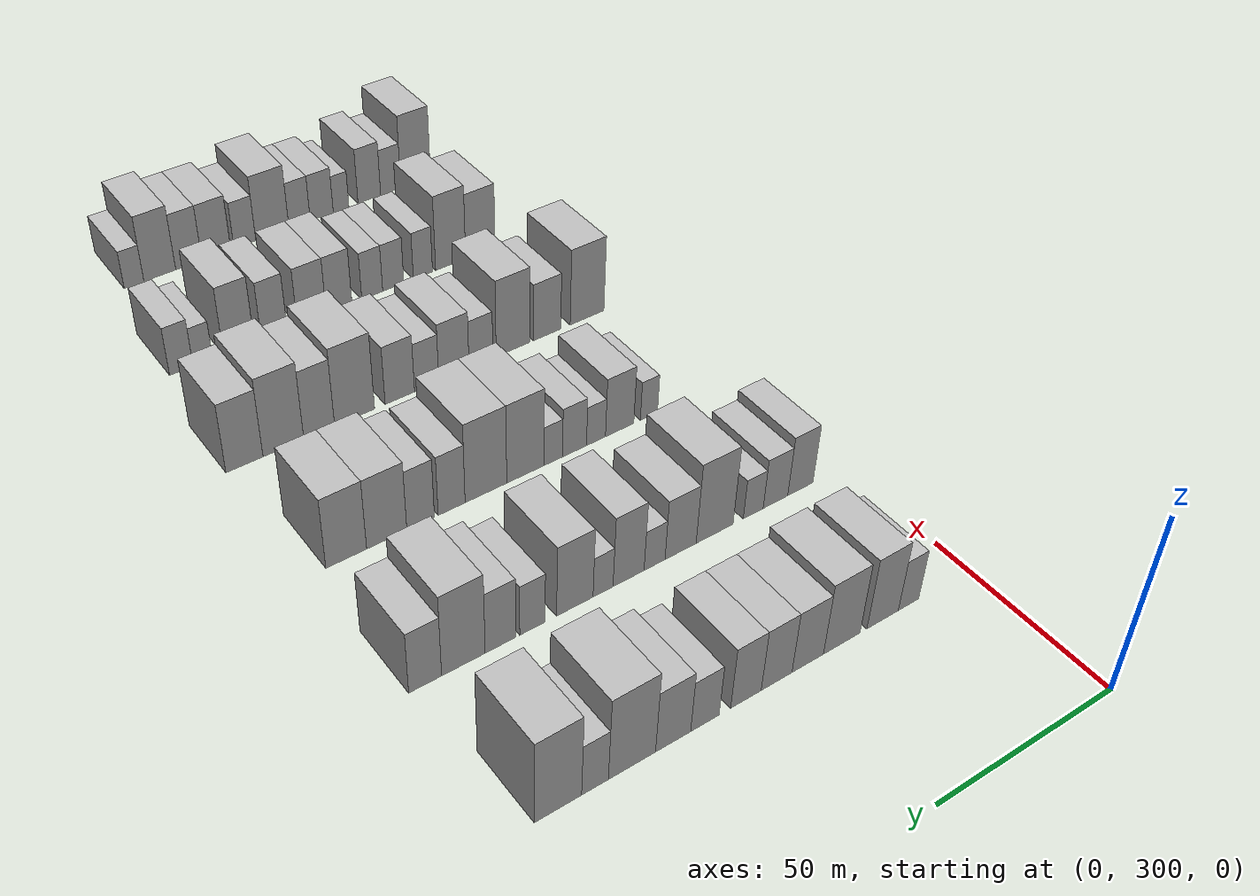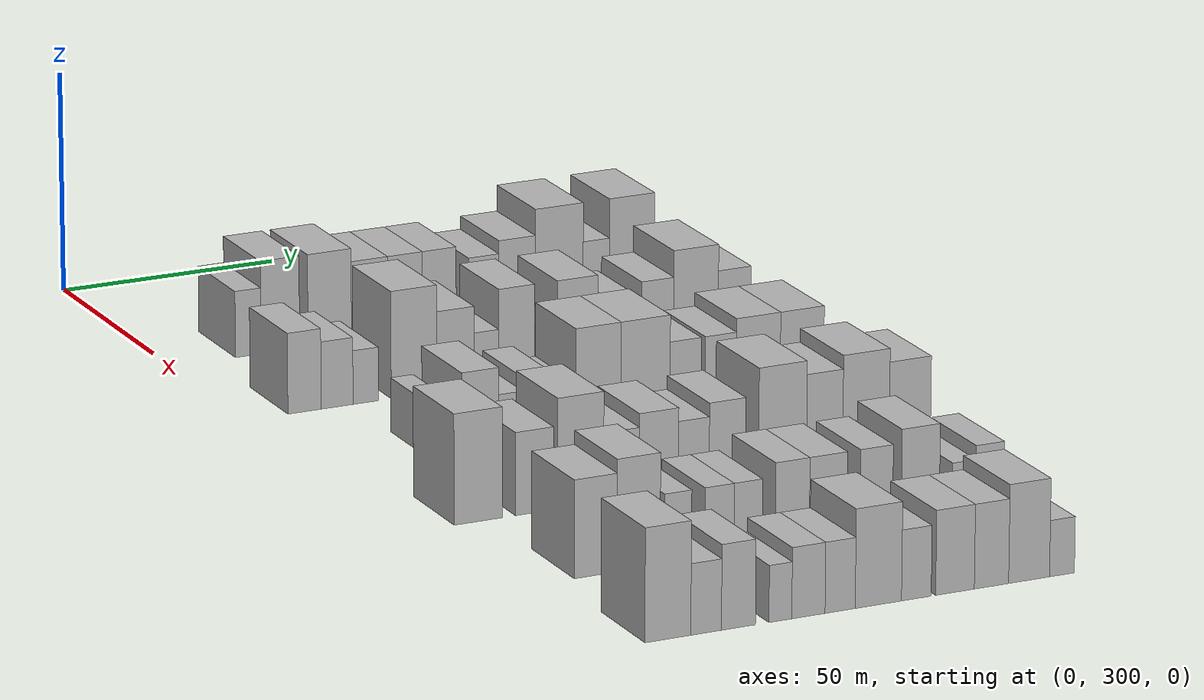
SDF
<sdf version="1.6">
 <world name="default">
  <model name="building_106">
   <static>1</static>
   <pose>50.0000 318.1851 0 0.000000 0.000000 0.000000</pose>
   <link name="link">
    <pose>0 0 7.50 0 0 0</pose>
    <collision name="collision"><geometry><box><size>20.0000 6.0369 15.0000</size></box></geometry></collision>
    <visual name="visual">
     <cast_shadows>0</cast_shadows>
     <geometry><box><size>20.0000 6.0369 15.0000</size></box></geometry>
     <material>
      <script>
       <uri>model://HANNAS_wall/materials/scripts</uri>
       <uri>model://HANNAS_wall/materials/textures</uri>
       <name>vrc/HANNAS_wall</name>
      </script>
     </material>
    </visual>
   </link>
  </model>
  <model name="building_107">
   <static>1</static>
   <pose>50.0000 325.7697 0 0.000000 0.000000 0.000000</pose>
   <link name="link">
    <pose>0 0 10.50 0 0 0</pose>
    <collision name="collision"><geometry><box><size>20.0000 9.1323 21.0000</size></box></geometry></collision>
    <visual name="visual">
     <cast_shadows>0</cast_shadows>
     <geometry><box><size>20.0000 9.1323 21.0000</size></box></geometry>
     <material>
      <script>
       <uri>model://HANNAS_wall/materials/scripts</uri>
       <uri>model://HANNAS_wall/materials/textures</uri>
       <name>vrc/HANNAS_wall</name>
      </script>
     </material>
    </visual>
   </link>
  </model>
  <model name="building_108">
   <static>1</static>
   <pose>50.0000 337.5017 0 0.000000 0.000000 0.000000</pose>
   <link name="link">
    <pose>0 0 10.50 0 0 0</pose>
    <collision name="collision"><geometry><box><size>20.0000 10.3317 21.0000</size></box></geometry></collision>
    <visual name="visual">
     <cast_shadows>0</cast_shadows>
     <geometry><box><size>20.0000 10.3317 21.0000</size></box></geometry>
     <material>
      <script>
       <uri>model://HANNAS_wall/materials/scripts</uri>
       <uri>model://HANNAS_wall/materials/textures</uri>
       <name>vrc/HANNAS_wall</name>
      </script>
     </material>
    </visual>
   </link>
  </model>
  <model name="building_109">
   <static>1</static>
   <pose>50.0000 347.0142 0 0.000000 0.000000 0.000000</pose>
   <link name="link">
    <pose>0 0 9.00 0 0 0</pose>
    <collision name="collision"><geometry><box><size>20.0000 8.6933 18.0000</size></box></geometry></collision>
    <visual name="visual">
     <cast_shadows>0</cast_shadows>
     <geometry><box><size>20.0000 8.6933 18.0000</size></box></geometry>
     <material>
      <script>
       <uri>model://HANNAS_wall/materials/scripts</uri>
       <uri>model://HANNAS_wall/materials/textures</uri>
       <name>vrc/HANNAS_wall</name>
      </script>
     </material>
    </visual>
   </link>
  </model>
  <model name="building_110">
   <static>1</static>
   <pose>50.0000 355.5153 0 0.000000 0.000000 0.000000</pose>
   <link name="link">
    <pose>0 0 9.00 0 0 0</pose>
    <collision name="collision"><geometry><box><size>20.0000 8.3088 18.0000</size></box></geometry></collision>
    <visual name="visual">
     <cast_shadows>0</cast_shadows>
     <geometry><box><size>20.0000 8.3088 18.0000</size></box></geometry>
     <material>
      <script>
       <uri>model://HANNAS_wall/materials/scripts</uri>
       <uri>model://HANNAS_wall/materials/textures</uri>
       <name>vrc/HANNAS_wall</name>
      </script>
     </material>
    </visual>
   </link>
  </model>
  <model name="building_111">
   <static>1</static>
   <pose>50.0000 363.7151 0 0.000000 0.000000 0.000000</pose>
   <link name="link">
    <pose>0 0 9.00 0 0 0</pose>
    <collision name="collision"><geometry><box><size>20.0000 8.0907 18.0000</size></box></geometry></collision>
    <visual name="visual">
     <cast_shadows>0</cast_shadows>
     <geometry><box><size>20.0000 8.0907 18.0000</size></box></geometry>
     <material>
      <script>
       <uri>model://HANNAS_wall/materials/scripts</uri>
       <uri>model://HANNAS_wall/materials/textures</uri>
       <name>vrc/HANNAS_wall</name>
      </script>
     </material>
    </visual>
   </link>
  </model>
  <model name="building_112">
   <static>1</static>
   <pose>50.0000 374.4241 0 0.000000 0.000000 0.000000</pose>
   <link name="link">
    <pose>0 0 7.50 0 0 0</pose>
    <collision name="collision"><geometry><box><size>20.0000 7.3274 15.0000</size></box></geometry></collision>
    <visual name="visual">
     <cast_shadows>0</cast_shadows>
     <geometry><box><size>20.0000 7.3274 15.0000</size></box></geometry>
     <material>
      <script>
       <uri>model://HANNAS_wall/materials/scripts</uri>
       <uri>model://HANNAS_wall/materials/textures</uri>
       <name>vrc/HANNAS_wall</name>
      </script>
     </material>
    </visual>
   </link>
  </model>
  <model name="building_113">
   <static>1</static>
   <pose>50.0000 382.5127 0 0.000000 0.000000 0.000000</pose>
   <link name="link">
    <pose>0 0 9.00 0 0 0</pose>
    <collision name="collision"><geometry><box><size>20.0000 8.8498 18.0000</size></box></geometry></collision>
    <visual name="visual">
     <cast_shadows>0</cast_shadows>
     <geometry><box><size>20.0000 8.8498 18.0000</size></box></geometry>
     <material>
      <script>
       <uri>model://HANNAS_wall/materials/scripts</uri>
       <uri>model://HANNAS_wall/materials/textures</uri>
       <name>vrc/HANNAS_wall</name>
      </script>
     </material>
    </visual>
   </link>
  </model>
  <model name="building_114">
   <static>1</static>
   <pose>50.0000 392.7235 0 0.000000 0.000000 0.000000</pose>
   <link name="link">
    <pose>0 0 12.00 0 0 0</pose>
    <collision name="collision"><geometry><box><size>20.0000 11.5718 24.0000</size></box></geometry></collision>
    <visual name="visual">
     <cast_shadows>0</cast_shadows>
     <geometry><box><size>20.0000 11.5718 24.0000</size></box></geometry>
     <material>
      <script>
       <uri>model://HANNAS_wall/materials/scripts</uri>
       <uri>model://HANNAS_wall/materials/textures</uri>
       <name>vrc/HANNAS_wall</name>
      </script>
     </material>
    </visual>
   </link>
  </model>
  <model name="building_115">
   <static>1</static>
   <pose>50.0000 401.7098 0 0.000000 0.000000 0.000000</pose>
   <link name="link">
    <pose>0 0 7.50 0 0 0</pose>
    <collision name="collision"><geometry><box><size>20.0000 6.4007 15.0000</size></box></geometry></collision>
    <visual name="visual">
     <cast_shadows>0</cast_shadows>
     <geometry><box><size>20.0000 6.4007 15.0000</size></box></geometry>
     <material>
      <script>
       <uri>model://HANNAS_wall/materials/scripts</uri>
       <uri>model://HANNAS_wall/materials/textures</uri>
       <name>vrc/HANNAS_wall</name>
      </script>
     </material>
    </visual>
   </link>
  </model>
  <model name="building_116">
   <static>1</static>
   <pose>50.0000 410.4391 0 0.000000 0.000000 0.000000</pose>
   <link name="link">
    <pose>0 0 12.00 0 0 0</pose>
    <collision name="collision"><geometry><box><size>20.0000 11.0579 24.0000</size></box></geometry></collision>
    <visual name="visual">
     <cast_shadows>0</cast_shadows>
     <geometry><box><size>20.0000 11.0579 24.0000</size></box></geometry>
     <material>
      <script>
       <uri>model://HANNAS_wall/materials/scripts</uri>
       <uri>model://HANNAS_wall/materials/textures</uri>
       <name>vrc/HANNAS_wall</name>
      </script>
     </material>
    </visual>
   </link>
  </model>
  <model name="building_247">
   <static>1</static>
   <pose>90.0000 313.7544 0 0.000000 0.000000 0.000000</pose>
   <link name="link">
    <pose>0 0 9.00 0 0 0</pose>
    <collision name="collision"><geometry><box><size>20.0000 7.7348 18.0000</size></box></geometry></collision>
    <visual name="visual">
     <cast_shadows>0</cast_shadows>
     <geometry><box><size>20.0000 7.7348 18.0000</size></box></geometry>
     <material>
      <script>
       <uri>model://HANNAS_wall/materials/scripts</uri>
       <uri>model://HANNAS_wall/materials/textures</uri>
       <name>vrc/HANNAS_wall</name>
      </script>
     </material>
    </visual>
   </link>
  </model>
  <model name="building_248">
   <static>1</static>
   <pose>90.0000 321.3329 0 0.000000 0.000000 0.000000</pose>
   <link name="link">
    <pose>0 0 7.50 0 0 0</pose>
    <collision name="collision"><geometry><box><size>20.0000 7.4222 15.0000</size></box></geometry></collision>
    <visual name="visual">
     <cast_shadows>0</cast_shadows>
     <geometry><box><size>20.0000 7.4222 15.0000</size></box></geometry>
     <material>
      <script>
       <uri>model://HANNAS_wall/materials/scripts</uri>
       <uri>model://HANNAS_wall/materials/textures</uri>
       <name>vrc/HANNAS_wall</name>
      </script>
     </material>
    </visual>
   </link>
  </model>
  <model name="building_249">
   <static>1</static>
   <pose>90.0000 328.0067 0 0.000000 0.000000 0.000000</pose>
   <link name="link">
    <pose>0 0 6.00 0 0 0</pose>
    <collision name="collision"><geometry><box><size>20.0000 5.9254 12.0000</size></box></geometry></collision>
    <visual name="visual">
     <cast_shadows>0</cast_shadows>
     <geometry><box><size>20.0000 5.9254 12.0000</size></box></geometry>
     <material>
      <script>
       <uri>model://HANNAS_wall/materials/scripts</uri>
       <uri>model://HANNAS_wall/materials/textures</uri>
       <name>vrc/HANNAS_wall</name>
      </script>
     </material>
    </visual>
   </link>
  </model>
  <model name="building_250">
   <static>1</static>
   <pose>90.0000 339.3198 0 0.000000 0.000000 0.000000</pose>
   <link name="link">
    <pose>0 0 12.00 0 0 0</pose>
    <collision name="collision"><geometry><box><size>20.0000 10.7007 24.0000</size></box></geometry></collision>
    <visual name="visual">
     <cast_shadows>0</cast_shadows>
     <geometry><box><size>20.0000 10.7007 24.0000</size></box></geometry>
     <material>
      <script>
       <uri>model://HANNAS_wall/materials/scripts</uri>
       <uri>model://HANNAS_wall/materials/textures</uri>
       <name>vrc/HANNAS_wall</name>
      </script>
     </material>
    </visual>
   </link>
  </model>
  <model name="building_251">
   <static>1</static>
   <pose>90.0000 349.0833 0 0.000000 0.000000 0.000000</pose>
   <link name="link">
    <pose>0 0 9.00 0 0 0</pose>
    <collision name="collision"><geometry><box><size>20.0000 8.8263 18.0000</size></box></geometry></collision>
    <visual name="visual">
     <cast_shadows>0</cast_shadows>
     <geometry><box><size>20.0000 8.8263 18.0000</size></box></geometry>
     <material>
      <script>
       <uri>model://HANNAS_wall/materials/scripts</uri>
       <uri>model://HANNAS_wall/materials/textures</uri>
       <name>vrc/HANNAS_wall</name>
      </script>
     </material>
    </visual>
   </link>
  </model>
  <model name="building_252">
   <static>1</static>
   <pose>90.0000 356.4102 0 0.000000 0.000000 0.000000</pose>
   <link name="link">
    <pose>0 0 6.00 0 0 0</pose>
    <collision name="collision"><geometry><box><size>20.0000 5.8276 12.0000</size></box></geometry></collision>
    <visual name="visual">
     <cast_shadows>0</cast_shadows>
     <geometry><box><size>20.0000 5.8276 12.0000</size></box></geometry>
     <material>
      <script>
       <uri>model://HANNAS_wall/materials/scripts</uri>
       <uri>model://HANNAS_wall/materials/textures</uri>
       <name>vrc/HANNAS_wall</name>
      </script>
     </material>
    </visual>
   </link>
  </model>
  <model name="building_253">
   <static>1</static>
   <pose>90.0000 363.5748 0 0.000000 0.000000 0.000000</pose>
   <link name="link">
    <pose>0 0 10.50 0 0 0</pose>
    <collision name="collision"><geometry><box><size>20.0000 8.5016 21.0000</size></box></geometry></collision>
    <visual name="visual">
     <cast_shadows>0</cast_shadows>
     <geometry><box><size>20.0000 8.5016 21.0000</size></box></geometry>
     <material>
      <script>
       <uri>model://HANNAS_wall/materials/scripts</uri>
       <uri>model://HANNAS_wall/materials/textures</uri>
       <name>vrc/HANNAS_wall</name>
      </script>
     </material>
    </visual>
   </link>
  </model>
  <model name="building_254">
   <static>1</static>
   <pose>90.0000 370.5193 0 0.000000 0.000000 0.000000</pose>
   <link name="link">
    <pose>0 0 6.00 0 0 0</pose>
    <collision name="collision"><geometry><box><size>20.0000 5.3873 12.0000</size></box></geometry></collision>
    <visual name="visual">
     <cast_shadows>0</cast_shadows>
     <geometry><box><size>20.0000 5.3873 12.0000</size></box></geometry>
     <material>
      <script>
       <uri>model://HANNAS_wall/materials/scripts</uri>
       <uri>model://HANNAS_wall/materials/textures</uri>
       <name>vrc/HANNAS_wall</name>
      </script>
     </material>
    </visual>
   </link>
  </model>
  <model name="building_255">
   <static>1</static>
   <pose>90.0000 378.0370 0 0.000000 0.000000 0.000000</pose>
   <link name="link">
    <pose>0 0 10.50 0 0 0</pose>
    <collision name="collision"><geometry><box><size>20.0000 9.6482 21.0000</size></box></geometry></collision>
    <visual name="visual">
     <cast_shadows>0</cast_shadows>
     <geometry><box><size>20.0000 9.6482 21.0000</size></box></geometry>
     <material>
      <script>
       <uri>model://HANNAS_wall/materials/scripts</uri>
       <uri>model://HANNAS_wall/materials/textures</uri>
       <name>vrc/HANNAS_wall</name>
      </script>
     </material>
    </visual>
   </link>
  </model>
  <model name="building_256">
   <static>1</static>
   <pose>90.0000 389.1074 0 0.000000 0.000000 0.000000</pose>
   <link name="link">
    <pose>0 0 7.50 0 0 0</pose>
    <collision name="collision"><geometry><box><size>20.0000 6.4924 15.0000</size></box></geometry></collision>
    <visual name="visual">
     <cast_shadows>0</cast_shadows>
     <geometry><box><size>20.0000 6.4924 15.0000</size></box></geometry>
     <material>
      <script>
       <uri>model://HANNAS_wall/materials/scripts</uri>
       <uri>model://HANNAS_wall/materials/textures</uri>
       <name>vrc/HANNAS_wall</name>
      </script>
     </material>
    </visual>
   </link>
  </model>
  <model name="building_257">
   <static>1</static>
   <pose>90.0000 397.2209 0 0.000000 0.000000 0.000000</pose>
   <link name="link">
    <pose>0 0 9.00 0 0 0</pose>
    <collision name="collision"><geometry><box><size>20.0000 7.7346 18.0000</size></box></geometry></collision>
    <visual name="visual">
     <cast_shadows>0</cast_shadows>
     <geometry><box><size>20.0000 7.7346 18.0000</size></box></geometry>
     <material>
      <script>
       <uri>model://HANNAS_wall/materials/scripts</uri>
       <uri>model://HANNAS_wall/materials/textures</uri>
       <name>vrc/HANNAS_wall</name>
      </script>
     </material>
    </visual>
   </link>
  </model>
  <model name="building_258">
   <static>1</static>
   <pose>90.0000 406.4496 0 0.000000 0.000000 0.000000</pose>
   <link name="link">
    <pose>0 0 12.00 0 0 0</pose>
    <collision name="collision"><geometry><box><size>20.0000 10.7229 24.0000</size></box></geometry></collision>
    <visual name="visual">
     <cast_shadows>0</cast_shadows>
     <geometry><box><size>20.0000 10.7229 24.0000</size></box></geometry>
     <material>
      <script>
       <uri>model://HANNAS_wall/materials/scripts</uri>
       <uri>model://HANNAS_wall/materials/textures</uri>
       <name>vrc/HANNAS_wall</name>
      </script>
     </material>
    </visual>
   </link>
  </model>
  <model name="building_259">
   <static>1</static>
   <pose>90.0000 415.7829 0 0.000000 0.000000 0.000000</pose>
   <link name="link">
    <pose>0 0 9.00 0 0 0</pose>
    <collision name="collision"><geometry><box><size>20.0000 7.9437 18.0000</size></box></geometry></collision>
    <visual name="visual">
     <cast_shadows>0</cast_shadows>
     <geometry><box><size>20.0000 7.9437 18.0000</size></box></geometry>
     <material>
      <script>
       <uri>model://HANNAS_wall/materials/scripts</uri>
       <uri>model://HANNAS_wall/materials/textures</uri>
       <name>vrc/HANNAS_wall</name>
      </script>
     </material>
    </visual>
   </link>
  </model>
  <model name="building_383">
   <static>1</static>
   <pose>130.0000 327.3970 0 0.000000 0.000000 0.000000</pose>
   <link name="link">
    <pose>0 0 6.00 0 0 0</pose>
    <collision name="collision"><geometry><box><size>20.0000 5.2364 12.0000</size></box></geometry></collision>
    <visual name="visual">
     <cast_shadows>0</cast_shadows>
     <geometry><box><size>20.0000 5.2364 12.0000</size></box></geometry>
     <material>
      <script>
       <uri>model://HANNAS_wall/materials/scripts</uri>
       <uri>model://HANNAS_wall/materials/textures</uri>
       <name>vrc/HANNAS_wall</name>
      </script>
     </material>
    </visual>
   </link>
  </model>
  <model name="building_384">
   <static>1</static>
   <pose>130.0000 336.2812 0 0.000000 0.000000 0.000000</pose>
   <link name="link">
    <pose>0 0 9.00 0 0 0</pose>
    <collision name="collision"><geometry><box><size>20.0000 8.5319 18.0000</size></box></geometry></collision>
    <visual name="visual">
     <cast_shadows>0</cast_shadows>
     <geometry><box><size>20.0000 8.5319 18.0000</size></box></geometry>
     <material>
      <script>
       <uri>model://HANNAS_wall/materials/scripts</uri>
       <uri>model://HANNAS_wall/materials/textures</uri>
       <name>vrc/HANNAS_wall</name>
      </script>
     </material>
    </visual>
   </link>
  </model>
  <model name="building_385">
   <static>1</static>
   <pose>130.0000 343.3643 0 0.000000 0.000000 0.000000</pose>
   <link name="link">
    <pose>0 0 6.00 0 0 0</pose>
    <collision name="collision"><geometry><box><size>20.0000 5.6344 12.0000</size></box></geometry></collision>
    <visual name="visual">
     <cast_shadows>0</cast_shadows>
     <geometry><box><size>20.0000 5.6344 12.0000</size></box></geometry>
     <material>
      <script>
       <uri>model://HANNAS_wall/materials/scripts</uri>
       <uri>model://HANNAS_wall/materials/textures</uri>
       <name>vrc/HANNAS_wall</name>
      </script>
     </material>
    </visual>
   </link>
  </model>
  <model name="building_386">
   <static>1</static>
   <pose>130.0000 349.6934 0 0.000000 0.000000 0.000000</pose>
   <link name="link">
    <pose>0 0 7.50 0 0 0</pose>
    <collision name="collision"><geometry><box><size>20.0000 7.0237 15.0000</size></box></geometry></collision>
    <visual name="visual">
     <cast_shadows>0</cast_shadows>
     <geometry><box><size>20.0000 7.0237 15.0000</size></box></geometry>
     <material>
      <script>
       <uri>model://HANNAS_wall/materials/scripts</uri>
       <uri>model://HANNAS_wall/materials/textures</uri>
       <name>vrc/HANNAS_wall</name>
      </script>
     </material>
    </visual>
   </link>
  </model>
  <model name="building_387">
   <static>1</static>
   <pose>130.0000 355.8653 0 0.000000 0.000000 0.000000</pose>
   <link name="link">
    <pose>0 0 6.00 0 0 0</pose>
    <collision name="collision"><geometry><box><size>20.0000 5.3201 12.0000</size></box></geometry></collision>
    <visual name="visual">
     <cast_shadows>0</cast_shadows>
     <geometry><box><size>20.0000 5.3201 12.0000</size></box></geometry>
     <material>
      <script>
       <uri>model://HANNAS_wall/materials/scripts</uri>
       <uri>model://HANNAS_wall/materials/textures</uri>
       <name>vrc/HANNAS_wall</name>
      </script>
     </material>
    </visual>
   </link>
  </model>
  <model name="building_388">
   <static>1</static>
   <pose>130.0000 363.8069 0 0.000000 0.000000 0.000000</pose>
   <link name="link">
    <pose>0 0 12.00 0 0 0</pose>
    <collision name="collision"><geometry><box><size>20.0000 10.5631 24.0000</size></box></geometry></collision>
    <visual name="visual">
     <cast_shadows>0</cast_shadows>
     <geometry><box><size>20.0000 10.5631 24.0000</size></box></geometry>
     <material>
      <script>
       <uri>model://HANNAS_wall/materials/scripts</uri>
       <uri>model://HANNAS_wall/materials/textures</uri>
       <name>vrc/HANNAS_wall</name>
      </script>
     </material>
    </visual>
   </link>
  </model>
  <model name="building_389">
   <static>1</static>
   <pose>130.0000 374.8373 0 0.000000 0.000000 0.000000</pose>
   <link name="link">
    <pose>0 0 12.00 0 0 0</pose>
    <collision name="collision"><geometry><box><size>20.0000 11.4977 24.0000</size></box></geometry></collision>
    <visual name="visual">
     <cast_shadows>0</cast_shadows>
     <geometry><box><size>20.0000 11.4977 24.0000</size></box></geometry>
     <material>
      <script>
       <uri>model://HANNAS_wall/materials/scripts</uri>
       <uri>model://HANNAS_wall/materials/textures</uri>
       <name>vrc/HANNAS_wall</name>
      </script>
     </material>
    </visual>
   </link>
  </model>
  <model name="building_390">
   <static>1</static>
   <pose>130.0000 384.2368 0 0.000000 0.000000 0.000000</pose>
   <link name="link">
    <pose>0 0 9.00 0 0 0</pose>
    <collision name="collision"><geometry><box><size>20.0000 7.3013 18.0000</size></box></geometry></collision>
    <visual name="visual">
     <cast_shadows>0</cast_shadows>
     <geometry><box><size>20.0000 7.3013 18.0000</size></box></geometry>
     <material>
      <script>
       <uri>model://HANNAS_wall/materials/scripts</uri>
       <uri>model://HANNAS_wall/materials/textures</uri>
       <name>vrc/HANNAS_wall</name>
      </script>
     </material>
    </visual>
   </link>
  </model>
  <model name="building_391">
   <static>1</static>
   <pose>130.0000 392.5499 0 0.000000 0.000000 0.000000</pose>
   <link name="link">
    <pose>0 0 9.00 0 0 0</pose>
    <collision name="collision"><geometry><box><size>20.0000 7.3250 18.0000</size></box></geometry></collision>
    <visual name="visual">
     <cast_shadows>0</cast_shadows>
     <geometry><box><size>20.0000 7.3250 18.0000</size></box></geometry>
     <material>
      <script>
       <uri>model://HANNAS_wall/materials/scripts</uri>
       <uri>model://HANNAS_wall/materials/textures</uri>
       <name>vrc/HANNAS_wall</name>
      </script>
     </material>
    </visual>
   </link>
  </model>
  <model name="building_392">
   <static>1</static>
   <pose>130.0000 401.4364 0 0.000000 0.000000 0.000000</pose>
   <link name="link">
    <pose>0 0 10.50 0 0 0</pose>
    <collision name="collision"><geometry><box><size>20.0000 10.4479 21.0000</size></box></geometry></collision>
    <visual name="visual">
     <cast_shadows>0</cast_shadows>
     <geometry><box><size>20.0000 10.4479 21.0000</size></box></geometry>
     <material>
      <script>
       <uri>model://HANNAS_wall/materials/scripts</uri>
       <uri>model://HANNAS_wall/materials/textures</uri>
       <name>vrc/HANNAS_wall</name>
      </script>
     </material>
    </visual>
   </link>
  </model>
  <model name="building_393">
   <static>1</static>
   <pose>130.0000 411.8456 0 0.000000 0.000000 0.000000</pose>
   <link name="link">
    <pose>0 0 10.50 0 0 0</pose>
    <collision name="collision"><geometry><box><size>20.0000 10.3705 21.0000</size></box></geometry></collision>
    <visual name="visual">
     <cast_shadows>0</cast_shadows>
     <geometry><box><size>20.0000 10.3705 21.0000</size></box></geometry>
     <material>
      <script>
       <uri>model://HANNAS_wall/materials/scripts</uri>
       <uri>model://HANNAS_wall/materials/textures</uri>
       <name>vrc/HANNAS_wall</name>
      </script>
     </material>
    </visual>
   </link>
  </model>
  <model name="building_522">
   <static>1</static>
   <pose>170.0000 317.1963 0 0.000000 0.000000 0.000000</pose>
   <link name="link">
    <pose>0 0 12.00 0 0 0</pose>
    <collision name="collision"><geometry><box><size>20.0000 10.8747 24.0000</size></box></geometry></collision>
    <visual name="visual">
     <cast_shadows>0</cast_shadows>
     <geometry><box><size>20.0000 10.8747 24.0000</size></box></geometry>
     <material>
      <script>
       <uri>model://HANNAS_wall/materials/scripts</uri>
       <uri>model://HANNAS_wall/materials/textures</uri>
       <name>vrc/HANNAS_wall</name>
      </script>
     </material>
    </visual>
   </link>
  </model>
  <model name="building_523">
   <static>1</static>
   <pose>170.0000 329.9461 0 0.000000 0.000000 0.000000</pose>
   <link name="link">
    <pose>0 0 9.00 0 0 0</pose>
    <collision name="collision"><geometry><box><size>20.0000 8.6248 18.0000</size></box></geometry></collision>
    <visual name="visual">
     <cast_shadows>0</cast_shadows>
     <geometry><box><size>20.0000 8.6248 18.0000</size></box></geometry>
     <material>
      <script>
       <uri>model://HANNAS_wall/materials/scripts</uri>
       <uri>model://HANNAS_wall/materials/textures</uri>
       <name>vrc/HANNAS_wall</name>
      </script>
     </material>
    </visual>
   </link>
  </model>
  <model name="building_524">
   <static>1</static>
   <pose>170.0000 340.4994 0 0.000000 0.000000 0.000000</pose>
   <link name="link">
    <pose>0 0 12.00 0 0 0</pose>
    <collision name="collision"><geometry><box><size>20.0000 10.4819 24.0000</size></box></geometry></collision>
    <visual name="visual">
     <cast_shadows>0</cast_shadows>
     <geometry><box><size>20.0000 10.4819 24.0000</size></box></geometry>
     <material>
      <script>
       <uri>model://HANNAS_wall/materials/scripts</uri>
       <uri>model://HANNAS_wall/materials/textures</uri>
       <name>vrc/HANNAS_wall</name>
      </script>
     </material>
    </visual>
   </link>
  </model>
  <model name="building_525">
   <static>1</static>
   <pose>170.0000 350.3435 0 0.000000 0.000000 0.000000</pose>
   <link name="link">
    <pose>0 0 7.50 0 0 0</pose>
    <collision name="collision"><geometry><box><size>20.0000 7.2061 15.0000</size></box></geometry></collision>
    <visual name="visual">
     <cast_shadows>0</cast_shadows>
     <geometry><box><size>20.0000 7.2061 15.0000</size></box></geometry>
     <material>
      <script>
       <uri>model://HANNAS_wall/materials/scripts</uri>
       <uri>model://HANNAS_wall/materials/textures</uri>
       <name>vrc/HANNAS_wall</name>
      </script>
     </material>
    </visual>
   </link>
  </model>
  <model name="building_526">
   <static>1</static>
   <pose>170.0000 358.4382 0 0.000000 0.000000 0.000000</pose>
   <link name="link">
    <pose>0 0 9.00 0 0 0</pose>
    <collision name="collision"><geometry><box><size>20.0000 8.9834 18.0000</size></box></geometry></collision>
    <visual name="visual">
     <cast_shadows>0</cast_shadows>
     <geometry><box><size>20.0000 8.9834 18.0000</size></box></geometry>
     <material>
      <script>
       <uri>model://HANNAS_wall/materials/scripts</uri>
       <uri>model://HANNAS_wall/materials/textures</uri>
       <name>vrc/HANNAS_wall</name>
      </script>
     </material>
    </visual>
   </link>
  </model>
  <model name="building_527">
   <static>1</static>
   <pose>170.0000 366.4706 0 0.000000 0.000000 0.000000</pose>
   <link name="link">
    <pose>0 0 7.50 0 0 0</pose>
    <collision name="collision"><geometry><box><size>20.0000 7.0814 15.0000</size></box></geometry></collision>
    <visual name="visual">
     <cast_shadows>0</cast_shadows>
     <geometry><box><size>20.0000 7.0814 15.0000</size></box></geometry>
     <material>
      <script>
       <uri>model://HANNAS_wall/materials/scripts</uri>
       <uri>model://HANNAS_wall/materials/textures</uri>
       <name>vrc/HANNAS_wall</name>
      </script>
     </material>
    </visual>
   </link>
  </model>
  <model name="building_528">
   <static>1</static>
   <pose>170.0000 374.2363 0 0.000000 0.000000 0.000000</pose>
   <link name="link">
    <pose>0 0 9.00 0 0 0</pose>
    <collision name="collision"><geometry><box><size>20.0000 8.4501 18.0000</size></box></geometry></collision>
    <visual name="visual">
     <cast_shadows>0</cast_shadows>
     <geometry><box><size>20.0000 8.4501 18.0000</size></box></geometry>
     <material>
      <script>
       <uri>model://HANNAS_wall/materials/scripts</uri>
       <uri>model://HANNAS_wall/materials/textures</uri>
       <name>vrc/HANNAS_wall</name>
      </script>
     </material>
    </visual>
   </link>
  </model>
  <model name="building_529">
   <static>1</static>
   <pose>170.0000 387.0454 0 0.000000 0.000000 0.000000</pose>
   <link name="link">
    <pose>0 0 12.00 0 0 0</pose>
    <collision name="collision"><geometry><box><size>20.0000 11.1680 24.0000</size></box></geometry></collision>
    <visual name="visual">
     <cast_shadows>0</cast_shadows>
     <geometry><box><size>20.0000 11.1680 24.0000</size></box></geometry>
     <material>
      <script>
       <uri>model://HANNAS_wall/materials/scripts</uri>
       <uri>model://HANNAS_wall/materials/textures</uri>
       <name>vrc/HANNAS_wall</name>
      </script>
     </material>
    </visual>
   </link>
  </model>
  <model name="building_530">
   <static>1</static>
   <pose>170.0000 396.8537 0 0.000000 0.000000 0.000000</pose>
   <link name="link">
    <pose>0 0 10.50 0 0 0</pose>
    <collision name="collision"><geometry><box><size>20.0000 8.4486 21.0000</size></box></geometry></collision>
    <visual name="visual">
     <cast_shadows>0</cast_shadows>
     <geometry><box><size>20.0000 8.4486 21.0000</size></box></geometry>
     <material>
      <script>
       <uri>model://HANNAS_wall/materials/scripts</uri>
       <uri>model://HANNAS_wall/materials/textures</uri>
       <name>vrc/HANNAS_wall</name>
      </script>
     </material>
    </visual>
   </link>
  </model>
  <model name="building_531">
   <static>1</static>
   <pose>170.0000 406.5333 0 0.000000 0.000000 0.000000</pose>
   <link name="link">
    <pose>0 0 12.00 0 0 0</pose>
    <collision name="collision"><geometry><box><size>20.0000 10.9107 24.0000</size></box></geometry></collision>
    <visual name="visual">
     <cast_shadows>0</cast_shadows>
     <geometry><box><size>20.0000 10.9107 24.0000</size></box></geometry>
     <material>
      <script>
       <uri>model://HANNAS_wall/materials/scripts</uri>
       <uri>model://HANNAS_wall/materials/textures</uri>
       <name>vrc/HANNAS_wall</name>
      </script>
     </material>
    </visual>
   </link>
  </model>
  <model name="building_532">
   <static>1</static>
   <pose>170.0000 416.8605 0 0.000000 0.000000 0.000000</pose>
   <link name="link">
    <pose>0 0 10.50 0 0 0</pose>
    <collision name="collision"><geometry><box><size>20.0000 9.7437 21.0000</size></box></geometry></collision>
    <visual name="visual">
     <cast_shadows>0</cast_shadows>
     <geometry><box><size>20.0000 9.7437 21.0000</size></box></geometry>
     <material>
      <script>
       <uri>model://HANNAS_wall/materials/scripts</uri>
       <uri>model://HANNAS_wall/materials/textures</uri>
       <name>vrc/HANNAS_wall</name>
      </script>
     </material>
    </visual>
   </link>
  </model>
  <model name="building_661">
   <static>1</static>
   <pose>210.0000 324.6876 0 0.000000 0.000000 0.000000</pose>
   <link name="link">
    <pose>0 0 10.50 0 0 0</pose>
    <collision name="collision"><geometry><box><size>20.0000 9.6117 21.0000</size></box></geometry></collision>
    <visual name="visual">
     <cast_shadows>0</cast_shadows>
     <geometry><box><size>20.0000 9.6117 21.0000</size></box></geometry>
     <material>
      <script>
       <uri>model://HANNAS_wall/materials/scripts</uri>
       <uri>model://HANNAS_wall/materials/textures</uri>
       <name>vrc/HANNAS_wall</name>
      </script>
     </material>
    </visual>
   </link>
  </model>
  <model name="building_662">
   <static>1</static>
   <pose>210.0000 334.3246 0 0.000000 0.000000 0.000000</pose>
   <link name="link">
    <pose>0 0 12.00 0 0 0</pose>
    <collision name="collision"><geometry><box><size>20.0000 9.6622 24.0000</size></box></geometry></collision>
    <visual name="visual">
     <cast_shadows>0</cast_shadows>
     <geometry><box><size>20.0000 9.6622 24.0000</size></box></geometry>
     <material>
      <script>
       <uri>model://HANNAS_wall/materials/scripts</uri>
       <uri>model://HANNAS_wall/materials/textures</uri>
       <name>vrc/HANNAS_wall</name>
      </script>
     </material>
    </visual>
   </link>
  </model>
  <model name="building_663">
   <static>1</static>
   <pose>210.0000 343.1887 0 0.000000 0.000000 0.000000</pose>
   <link name="link">
    <pose>0 0 7.50 0 0 0</pose>
    <collision name="collision"><geometry><box><size>20.0000 6.0659 15.0000</size></box></geometry></collision>
    <visual name="visual">
     <cast_shadows>0</cast_shadows>
     <geometry><box><size>20.0000 6.0659 15.0000</size></box></geometry>
     <material>
      <script>
       <uri>model://HANNAS_wall/materials/scripts</uri>
       <uri>model://HANNAS_wall/materials/textures</uri>
       <name>vrc/HANNAS_wall</name>
      </script>
     </material>
    </visual>
   </link>
  </model>
  <model name="building_664">
   <static>1</static>
   <pose>210.0000 352.5089 0 0.000000 0.000000 0.000000</pose>
   <link name="link">
    <pose>0 0 7.50 0 0 0</pose>
    <collision name="collision"><geometry><box><size>20.0000 6.5746 15.0000</size></box></geometry></collision>
    <visual name="visual">
     <cast_shadows>0</cast_shadows>
     <geometry><box><size>20.0000 6.5746 15.0000</size></box></geometry>
     <material>
      <script>
       <uri>model://HANNAS_wall/materials/scripts</uri>
       <uri>model://HANNAS_wall/materials/textures</uri>
       <name>vrc/HANNAS_wall</name>
      </script>
     </material>
    </visual>
   </link>
  </model>
  <model name="building_665">
   <static>1</static>
   <pose>210.0000 359.0033 0 0.000000 0.000000 0.000000</pose>
   <link name="link">
    <pose>0 0 7.50 0 0 0</pose>
    <collision name="collision"><geometry><box><size>20.0000 6.4143 15.0000</size></box></geometry></collision>
    <visual name="visual">
     <cast_shadows>0</cast_shadows>
     <geometry><box><size>20.0000 6.4143 15.0000</size></box></geometry>
     <material>
      <script>
       <uri>model://HANNAS_wall/materials/scripts</uri>
       <uri>model://HANNAS_wall/materials/textures</uri>
       <name>vrc/HANNAS_wall</name>
      </script>
     </material>
    </visual>
   </link>
  </model>
  <model name="building_666">
   <static>1</static>
   <pose>210.0000 369.0851 0 0.000000 0.000000 0.000000</pose>
   <link name="link">
    <pose>0 0 9.00 0 0 0</pose>
    <collision name="collision"><geometry><box><size>20.0000 7.7493 18.0000</size></box></geometry></collision>
    <visual name="visual">
     <cast_shadows>0</cast_shadows>
     <geometry><box><size>20.0000 7.7493 18.0000</size></box></geometry>
     <material>
      <script>
       <uri>model://HANNAS_wall/materials/scripts</uri>
       <uri>model://HANNAS_wall/materials/textures</uri>
       <name>vrc/HANNAS_wall</name>
      </script>
     </material>
    </visual>
   </link>
  </model>
  <model name="building_667">
   <static>1</static>
   <pose>210.0000 377.2517 0 0.000000 0.000000 0.000000</pose>
   <link name="link">
    <pose>0 0 9.00 0 0 0</pose>
    <collision name="collision"><geometry><box><size>20.0000 8.5837 18.0000</size></box></geometry></collision>
    <visual name="visual">
     <cast_shadows>0</cast_shadows>
     <geometry><box><size>20.0000 8.5837 18.0000</size></box></geometry>
     <material>
      <script>
       <uri>model://HANNAS_wall/materials/scripts</uri>
       <uri>model://HANNAS_wall/materials/textures</uri>
       <name>vrc/HANNAS_wall</name>
      </script>
     </material>
    </visual>
   </link>
  </model>
  <model name="building_668">
   <static>1</static>
   <pose>210.0000 388.2885 0 0.000000 0.000000 0.000000</pose>
   <link name="link">
    <pose>0 0 9.00 0 0 0</pose>
    <collision name="collision"><geometry><box><size>20.0000 7.4899 18.0000</size></box></geometry></collision>
    <visual name="visual">
     <cast_shadows>0</cast_shadows>
     <geometry><box><size>20.0000 7.4899 18.0000</size></box></geometry>
     <material>
      <script>
       <uri>model://HANNAS_wall/materials/scripts</uri>
       <uri>model://HANNAS_wall/materials/textures</uri>
       <name>vrc/HANNAS_wall</name>
      </script>
     </material>
    </visual>
   </link>
  </model>
  <model name="building_669">
   <static>1</static>
   <pose>210.0000 398.4210 0 0.000000 0.000000 0.000000</pose>
   <link name="link">
    <pose>0 0 10.50 0 0 0</pose>
    <collision name="collision"><geometry><box><size>20.0000 8.7751 21.0000</size></box></geometry></collision>
    <visual name="visual">
     <cast_shadows>0</cast_shadows>
     <geometry><box><size>20.0000 8.7751 21.0000</size></box></geometry>
     <material>
      <script>
       <uri>model://HANNAS_wall/materials/scripts</uri>
       <uri>model://HANNAS_wall/materials/textures</uri>
       <name>vrc/HANNAS_wall</name>
      </script>
     </material>
    </visual>
   </link>
  </model>
  <model name="building_670">
   <static>1</static>
   <pose>210.0000 408.5249 0 0.000000 0.000000 0.000000</pose>
   <link name="link">
    <pose>0 0 6.00 0 0 0</pose>
    <collision name="collision"><geometry><box><size>20.0000 5.4327 12.0000</size></box></geometry></collision>
    <visual name="visual">
     <cast_shadows>0</cast_shadows>
     <geometry><box><size>20.0000 5.4327 12.0000</size></box></geometry>
     <material>
      <script>
       <uri>model://HANNAS_wall/materials/scripts</uri>
       <uri>model://HANNAS_wall/materials/textures</uri>
       <name>vrc/HANNAS_wall</name>
      </script>
     </material>
    </visual>
   </link>
  </model>
  <model name="building_671">
   <static>1</static>
   <pose>210.0000 414.4873 0 0.000000 0.000000 0.000000</pose>
   <link name="link">
    <pose>0 0 7.50 0 0 0</pose>
    <collision name="collision"><geometry><box><size>20.0000 6.4920 15.0000</size></box></geometry></collision>
    <visual name="visual">
     <cast_shadows>0</cast_shadows>
     <geometry><box><size>20.0000 6.4920 15.0000</size></box></geometry>
     <material>
      <script>
       <uri>model://HANNAS_wall/materials/scripts</uri>
       <uri>model://HANNAS_wall/materials/textures</uri>
       <name>vrc/HANNAS_wall</name>
      </script>
     </material>
    </visual>
   </link>
  </model>
  <model name="building_796">
   <static>1</static>
   <pose>250.0000 321.2981 0 0.000000 0.000000 0.000000</pose>
   <link name="link">
    <pose>0 0 12.00 0 0 0</pose>
    <collision name="collision"><geometry><box><size>20.0000 10.1066 24.0000</size></box></geometry></collision>
    <visual name="visual">
     <cast_shadows>0</cast_shadows>
     <geometry><box><size>20.0000 10.1066 24.0000</size></box></geometry>
     <material>
      <script>
       <uri>model://HANNAS_wall/materials/scripts</uri>
       <uri>model://HANNAS_wall/materials/textures</uri>
       <name>vrc/HANNAS_wall</name>
      </script>
     </material>
    </visual>
   </link>
  </model>
  <model name="building_797">
   <static>1</static>
   <pose>250.0000 329.7317 0 0.000000 0.000000 0.000000</pose>
   <link name="link">
    <pose>0 0 7.50 0 0 0</pose>
    <collision name="collision"><geometry><box><size>20.0000 6.7606 15.0000</size></box></geometry></collision>
    <visual name="visual">
     <cast_shadows>0</cast_shadows>
     <geometry><box><size>20.0000 6.7606 15.0000</size></box></geometry>
     <material>
      <script>
       <uri>model://HANNAS_wall/materials/scripts</uri>
       <uri>model://HANNAS_wall/materials/textures</uri>
       <name>vrc/HANNAS_wall</name>
      </script>
     </material>
    </visual>
   </link>
  </model>
  <model name="building_798">
   <static>1</static>
   <pose>250.0000 336.8728 0 0.000000 0.000000 0.000000</pose>
   <link name="link">
    <pose>0 0 9.00 0 0 0</pose>
    <collision name="collision"><geometry><box><size>20.0000 7.5216 18.0000</size></box></geometry></collision>
    <visual name="visual">
     <cast_shadows>0</cast_shadows>
     <geometry><box><size>20.0000 7.5216 18.0000</size></box></geometry>
     <material>
      <script>
       <uri>model://HANNAS_wall/materials/scripts</uri>
       <uri>model://HANNAS_wall/materials/textures</uri>
       <name>vrc/HANNAS_wall</name>
      </script>
     </material>
    </visual>
   </link>
  </model>
  <model name="building_799">
   <static>1</static>
   <pose>250.0000 346.1799 0 0.000000 0.000000 0.000000</pose>
   <link name="link">
    <pose>0 0 6.00 0 0 0</pose>
    <collision name="collision"><geometry><box><size>20.0000 5.0927 12.0000</size></box></geometry></collision>
    <visual name="visual">
     <cast_shadows>0</cast_shadows>
     <geometry><box><size>20.0000 5.0927 12.0000</size></box></geometry>
     <material>
      <script>
       <uri>model://HANNAS_wall/materials/scripts</uri>
       <uri>model://HANNAS_wall/materials/textures</uri>
       <name>vrc/HANNAS_wall</name>
      </script>
     </material>
    </visual>
   </link>
  </model>
  <model name="building_800">
   <static>1</static>
   <pose>250.0000 352.4313 0 0.000000 0.000000 0.000000</pose>
   <link name="link">
    <pose>0 0 7.50 0 0 0</pose>
    <collision name="collision"><geometry><box><size>20.0000 7.4101 15.0000</size></box></geometry></collision>
    <visual name="visual">
     <cast_shadows>0</cast_shadows>
     <geometry><box><size>20.0000 7.4101 15.0000</size></box></geometry>
     <material>
      <script>
       <uri>model://HANNAS_wall/materials/scripts</uri>
       <uri>model://HANNAS_wall/materials/textures</uri>
       <name>vrc/HANNAS_wall</name>
      </script>
     </material>
    </visual>
   </link>
  </model>
  <model name="building_801">
   <static>1</static>
   <pose>250.0000 359.5167 0 0.000000 0.000000 0.000000</pose>
   <link name="link">
    <pose>0 0 7.50 0 0 0</pose>
    <collision name="collision"><geometry><box><size>20.0000 6.7608 15.0000</size></box></geometry></collision>
    <visual name="visual">
     <cast_shadows>0</cast_shadows>
     <geometry><box><size>20.0000 6.7608 15.0000</size></box></geometry>
     <material>
      <script>
       <uri>model://HANNAS_wall/materials/scripts</uri>
       <uri>model://HANNAS_wall/materials/textures</uri>
       <name>vrc/HANNAS_wall</name>
      </script>
     </material>
    </visual>
   </link>
  </model>
  <model name="building_802">
   <static>1</static>
   <pose>250.0000 368.0940 0 0.000000 0.000000 0.000000</pose>
   <link name="link">
    <pose>0 0 10.50 0 0 0</pose>
    <collision name="collision"><geometry><box><size>20.0000 10.3939 21.0000</size></box></geometry></collision>
    <visual name="visual">
     <cast_shadows>0</cast_shadows>
     <geometry><box><size>20.0000 10.3939 21.0000</size></box></geometry>
     <material>
      <script>
       <uri>model://HANNAS_wall/materials/scripts</uri>
       <uri>model://HANNAS_wall/materials/textures</uri>
       <name>vrc/HANNAS_wall</name>
      </script>
     </material>
    </visual>
   </link>
  </model>
  <model name="building_803">
   <static>1</static>
   <pose>250.0000 376.6410 0 0.000000 0.000000 0.000000</pose>
   <link name="link">
    <pose>0 0 7.50 0 0 0</pose>
    <collision name="collision"><geometry><box><size>20.0000 6.7000 15.0000</size></box></geometry></collision>
    <visual name="visual">
     <cast_shadows>0</cast_shadows>
     <geometry><box><size>20.0000 6.7000 15.0000</size></box></geometry>
     <material>
      <script>
       <uri>model://HANNAS_wall/materials/scripts</uri>
       <uri>model://HANNAS_wall/materials/textures</uri>
       <name>vrc/HANNAS_wall</name>
      </script>
     </material>
    </visual>
   </link>
  </model>
  <model name="building_804">
   <static>1</static>
   <pose>250.0000 385.3685 0 0.000000 0.000000 0.000000</pose>
   <link name="link">
    <pose>0 0 9.00 0 0 0</pose>
    <collision name="collision"><geometry><box><size>20.0000 8.7550 18.0000</size></box></geometry></collision>
    <visual name="visual">
     <cast_shadows>0</cast_shadows>
     <geometry><box><size>20.0000 8.7550 18.0000</size></box></geometry>
     <material>
      <script>
       <uri>model://HANNAS_wall/materials/scripts</uri>
       <uri>model://HANNAS_wall/materials/textures</uri>
       <name>vrc/HANNAS_wall</name>
      </script>
     </material>
    </visual>
   </link>
  </model>
  <model name="building_805">
   <static>1</static>
   <pose>250.0000 393.6460 0 0.000000 0.000000 0.000000</pose>
   <link name="link">
    <pose>0 0 9.00 0 0 0</pose>
    <collision name="collision"><geometry><box><size>20.0000 7.8002 18.0000</size></box></geometry></collision>
    <visual name="visual">
     <cast_shadows>0</cast_shadows>
     <geometry><box><size>20.0000 7.8002 18.0000</size></box></geometry>
     <material>
      <script>
       <uri>model://HANNAS_wall/materials/scripts</uri>
       <uri>model://HANNAS_wall/materials/textures</uri>
       <name>vrc/HANNAS_wall</name>
      </script>
     </material>
    </visual>
   </link>
  </model>
  <model name="building_806">
   <static>1</static>
   <pose>250.0000 402.2127 0 0.000000 0.000000 0.000000</pose>
   <link name="link">
    <pose>0 0 10.50 0 0 0</pose>
    <collision name="collision"><geometry><box><size>20.0000 9.3332 21.0000</size></box></geometry></collision>
    <visual name="visual">
     <cast_shadows>0</cast_shadows>
     <geometry><box><size>20.0000 9.3332 21.0000</size></box></geometry>
     <material>
      <script>
       <uri>model://HANNAS_wall/materials/scripts</uri>
       <uri>model://HANNAS_wall/materials/textures</uri>
       <name>vrc/HANNAS_wall</name>
      </script>
     </material>
    </visual>
   </link>
  </model>
  <model name="building_807">
   <static>1</static>
   <pose>250.0000 409.7251 0 0.000000 0.000000 0.000000</pose>
   <link name="link">
    <pose>0 0 6.00 0 0 0</pose>
    <collision name="collision"><geometry><box><size>20.0000 5.6916 12.0000</size></box></geometry></collision>
    <visual name="visual">
     <cast_shadows>0</cast_shadows>
     <geometry><box><size>20.0000 5.6916 12.0000</size></box></geometry>
     <material>
      <script>
       <uri>model://HANNAS_wall/materials/scripts</uri>
       <uri>model://HANNAS_wall/materials/textures</uri>
       <name>vrc/HANNAS_wall</name>
      </script>
     </material>
    </visual>
   </link>
  </model>
 </world>
</sdf>
